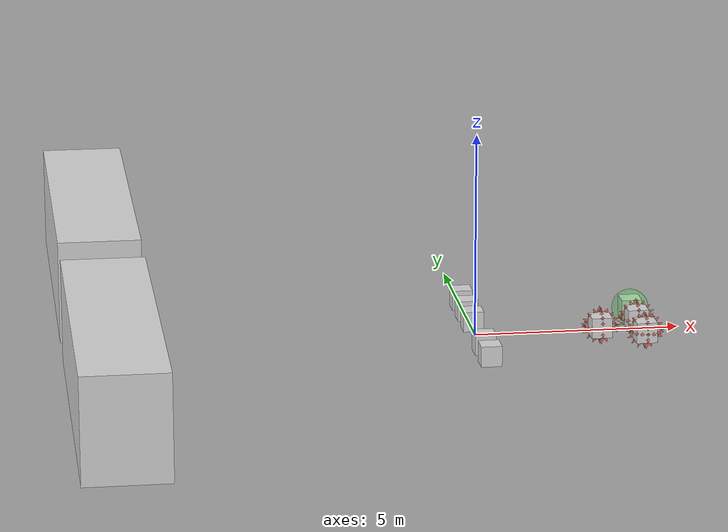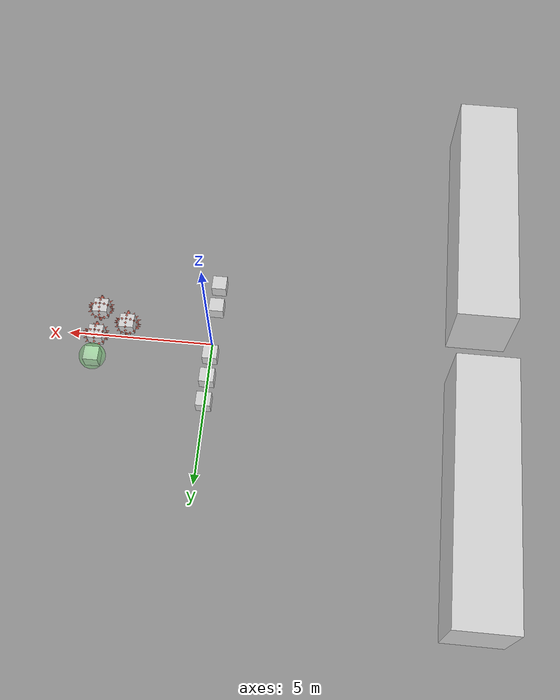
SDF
<?xml version="1.0" ?>
<sdf version="1.6">
  <model name="trap_b_1">
    <static>true</static>

    <include>
      <name>gate_m_start</name>
      <uri>model://study_track_gate_m_2</uri>
      <pose>0 0 0 0 0 0</pose>
    </include>

    <include>
      <name>normal_cue_0</name>
      <uri>model://vis_cue_normal</uri>
      <pose>0 -2.2 0.25 0 0 0</pose>
    </include>
    <include>
      <name>normal_cue_1</name>
      <uri>model://vis_cue_normal</uri>
      <pose>0 -1.33 0.25 0 0 0</pose>
    </include>
    <include>
      <name>normal_cue_2</name>
      <uri>model://vis_cue_normal</uri>
      <pose>0 0.47 0.25 0 0 0</pose>
    </include>
    <include>
      <name>normal_cue_3</name>
      <uri>model://vis_cue_normal</uri>
      <pose>0 1.33 0.25 0 0 0</pose>
    </include>
    <include>
      <name>normal_cue_4</name>
      <uri>model://vis_cue_normal</uri>
      <pose>0 2.2 0.25 0 0 0</pose>
    </include>

    <include>
      <name>repelling_cue_0</name>
      <uri>model://vis_cue_repel</uri>
      <pose>4 0.08 0.25 0 0 0</pose>
    </include>
    <include>
      <name>b_r</name>
      <uri>model://vis_cue_repel</uri>
      <pose>4 -0.94 0.25 0 0 0</pose>
    </include>
    <include>
      <name>repelling_cue_2</name>
      <uri>model://vis_cue_repel</uri>
      <pose>3 -0.43 0.25 0 0 0</pose>
    </include>

    <include>
      <name>b_l</name>
      <uri>model://vis_cue_attract</uri>
      <pose>4 0.9 0.25 0 0 0</pose>
    </include>

  </model>
</sdf>

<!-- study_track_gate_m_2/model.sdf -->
<sdf version="1.6">
  <model name="study_track_gate_m_2">
    <static>true</static>

    <link name='wall_l'>
      <pose>-9 -4.95 1.25 0 0 0</pose>
      <collision name='collision'>
        <geometry>
          <box>
            <size>2 8.5 2.5</size>
          </box>
        </geometry>
      </collision>
      <visual name='box_visual'>
        <geometry>
          <box>
            <size>2 8.5 2.5</size>
          </box>
        </geometry>
        <material>
          <ambient>0.85 0.85 0.85 1</ambient>
          <diffuse>0.85 0.85 0.85 1</diffuse>
          <specular>0.15 0.15 0.15 1</specular>
          <emissive>0 0 0 0</emissive>
        </material>
      </visual>
    </link>

    <link name='wall_r'>
      <pose>-9 4.95 1.25 0 0 0</pose>
      <collision name='collision'>
        <geometry>
          <box>
            <size>2 8.5 2.5</size>
          </box>
        </geometry>
      </collision>
      <visual name='box_visual'>
        <geometry>
          <box>
            <size>2 8.5 2.5</size>
          </box>
        </geometry>
        <material>
          <ambient>0.85 0.85 0.85 1</ambient>
          <diffuse>0.85 0.85 0.85 1</diffuse>
          <specular>0.15 0.15 0.15 1</specular>
          <emissive>0 0 0 0</emissive>
        </material>
      </visual>
    </link>

  </model>
</sdf>

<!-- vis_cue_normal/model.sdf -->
<sdf version="1.6">
  <model name="vis_cue_normal">
    <static>false</static>
    <pose>0 0 0.25 0 0 0</pose>
    <link name='vis_cue_normal'>
      <inertial>
        <mass>1</mass>
        <inertia>
          <ixx>0.166667</ixx>
          <ixy>0</ixy>
          <ixz>0</ixz>
          <iyy>0.166667</iyy>
          <iyz>0</iyz>
          <izz>0.166667</izz>
        </inertia>
      </inertial>
      <collision name='collision'>
        <geometry>
          <box>
            <size>0.5 0.5 0.5</size>
          </box>
        </geometry>
        <max_contacts>10</max_contacts>
        <surface>
          <contact>
            <ode/>
          </contact>
          <bounce/>
          <friction>
            <torsional>
              <ode/>
            </torsional>
            <ode/>
          </friction>
        </surface>
      </collision>
      <visual name='box_visual'>
        <geometry>
          <box>
            <size>0.5 0.5 0.5</size>
          </box>
        </geometry>
        <material>
          <ambient>0.85 0.85 0.85 1</ambient>
          <diffuse>0.85 0.85 0.85 1</diffuse>
          <specular>0.15 0.15 0.15 1</specular>
          <emissive>0 0 0 0</emissive>
        </material>
      </visual>
      <self_collide>0</self_collide>
      <kinematic>0</kinematic>
    </link>
  </model>
</sdf>

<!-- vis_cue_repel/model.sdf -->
<sdf version="1.6">
  <model name="vis_cue_repel">
    <static>false</static>
    <pose>0 0 0.25 0 0 0</pose>
    <link name='vis_cue_repel'>
      <inertial>
        <mass>1</mass>
        <inertia>
          <ixx>0.166667</ixx>
          <ixy>0</ixy>
          <ixz>0</ixz>
          <iyy>0.166667</iyy>
          <iyz>0</iyz>
          <izz>0.166667</izz>
        </inertia>
      </inertial>
      <collision name='collision'>
        <geometry>
          <box>
            <size>0.5 0.5 0.5</size>
          </box>
        </geometry>
        <max_contacts>10</max_contacts>
        <surface>
          <contact>
            <ode/>
          </contact>
          <bounce/>
          <friction>
            <torsional>
              <ode/>
            </torsional>
            <ode/>
          </friction>
        </surface>
      </collision>
      <visual name='box_visual'>
        <geometry>
          <box>
            <size>0.5 0.5 0.5</size>
          </box>
        </geometry>
        <material>
          <ambient>0.85 0.85 0.85 1</ambient>
          <diffuse>0.85 0.85 0.85 1</diffuse>
          <specular>0.15 0.15 0.15 1</specular>
          <emissive>0 0 0 0</emissive>
        </material>
      </visual>
      <visual name='cue_visual_1'>
        <pose>0 0 0 1.5708 0 1.5708</pose>
        <geometry>
          <mesh>
            <uri>model://vis_cue_repel/meshes/repelling_cue.stl</uri>
            <scale>0.36 0.36 0.36</scale>
          </mesh>
        </geometry>
        <material>
          <ambient>1 0.3 0.2 0.6</ambient>
          <diffuse>1 0.3 0.2 0.6</diffuse>
          <specular>1 0.3 0.2 0.7</specular>
          <emissive>0.5 0 0 0.1</emissive>
        </material>
      </visual>
      <visual name='cue_visual_2'>
        <pose>0 0 0 1.5708 0 0</pose>
        <geometry>
          <mesh>
            <uri>model://vis_cue_repel/meshes/repelling_cue.stl</uri>
            <scale>0.36 0.36 0.36</scale>
          </mesh>
        </geometry>
        <material>
          <ambient>1 0.3 0.2 0.6</ambient>
          <diffuse>1 0.3 0.2 0.6</diffuse>
          <specular>1 0.3 0.2 0.7</specular>
          <emissive>0.5 0 0 0.1</emissive>
        </material>
      </visual>
      <visual name='cue_visual_3'>
        <pose>0 0 0 0 0 0</pose>
        <geometry>
          <mesh>
            <uri>model://vis_cue_repel/meshes/repelling_cue.stl</uri>
            <scale>0.36 0.36 0.36</scale>
          </mesh>
        </geometry>
        <material>
          <ambient>1 0.3 0.2 0.6</ambient>
          <diffuse>1 0.3 0.2 0.6</diffuse>
          <specular>1 0.3 0.2 0.7</specular>
          <emissive>0.5 0 0 0.1</emissive>
        </material>
      </visual>
      <self_collide>0</self_collide>
      <kinematic>0</kinematic>
    </link>
  </model>
</sdf>

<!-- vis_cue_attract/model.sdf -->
<sdf version="1.6">
  <model name="vis_cue_attract">
    <static>false</static>
    <pose>0 0 0.25 0 0 0</pose>
    <link name='vis_cue_attract'>
      <inertial>
        <mass>1</mass>
        <inertia>
          <ixx>0.166667</ixx>
          <ixy>0</ixy>
          <ixz>0</ixz>
          <iyy>0.166667</iyy>
          <iyz>0</iyz>
          <izz>0.166667</izz>
        </inertia>
      </inertial>
      <collision name='collision'>
        <geometry>
          <box>
            <size>0.5 0.5 0.5</size>
          </box>
        </geometry>
        <max_contacts>10</max_contacts>
        <surface>
          <contact>
            <ode/>
          </contact>
          <bounce/>
          <friction>
            <torsional>
              <ode/>
            </torsional>
            <ode/>
          </friction>
        </surface>
      </collision>
      <visual name='box_visual'>
        <geometry>
          <box>
            <size>0.5 0.5 0.5</size>
          </box>
        </geometry>
        <material>
          <ambient>0.85 0.85 0.85 1</ambient>
          <diffuse>0.85 0.85 0.85 1</diffuse>
          <specular>0.15 0.15 0.15 1</specular>
          <emissive>0 0 0 0</emissive>
        </material>
      </visual>
      <visual name='cue_visual'>
        <geometry>
          <mesh>
            <uri>model://vis_cue_attract/meshes/sphere.stl</uri>
            <scale>0.9 0.9 0.9</scale>
          </mesh>
        </geometry>
        <material>
          <ambient>0 1 0 0.10</ambient>
          <diffuse>0 1 0 0.20</diffuse>
          <specular>0 1 0 0.20</specular>
          <emissive>0 1 0 0.1</emissive>
        </material>
      </visual>
      <self_collide>0</self_collide>
      <kinematic>0</kinematic>
    </link>
  </model>
</sdf>
